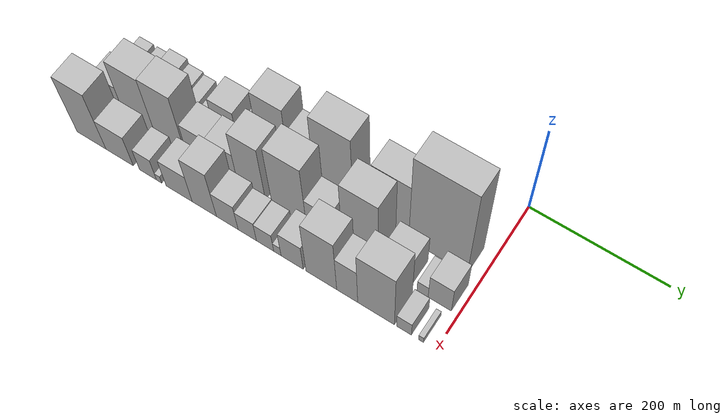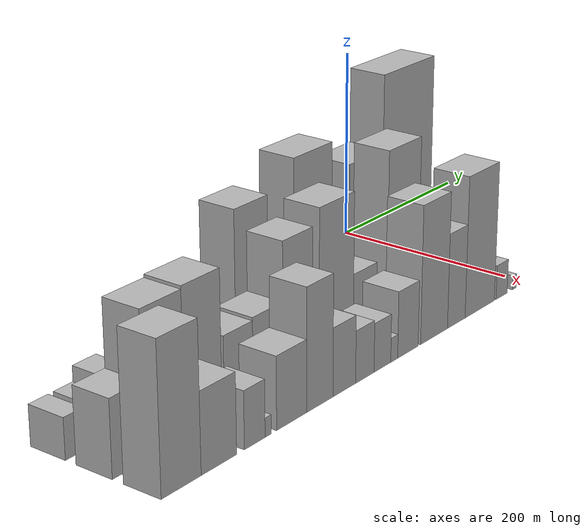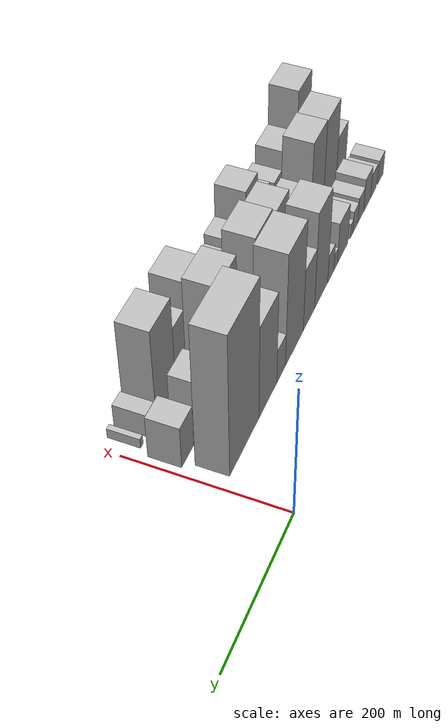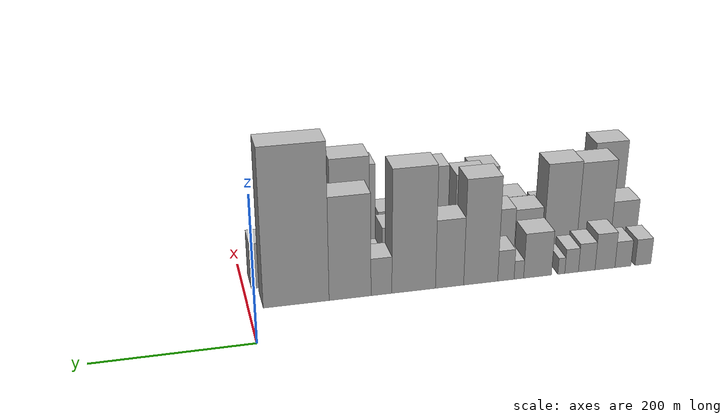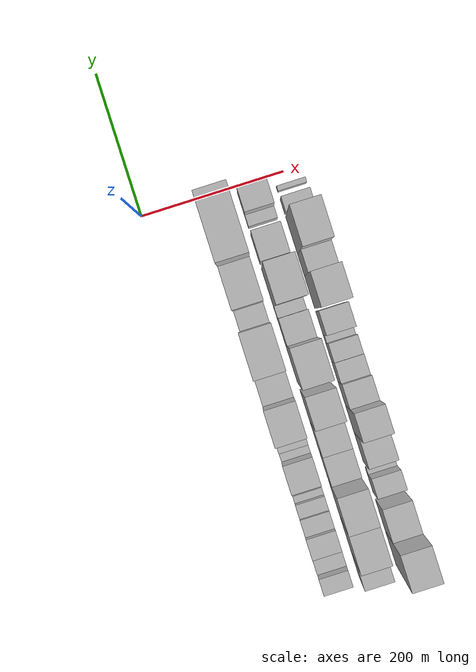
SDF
<sdf version="1.6">
 <world name="default">
  <model name="building_1">
   <static>1</static>
   <pose>100.0000 -536.5095 0 0.000000 0.000000 0.000000</pose>
   <link name="link">
    <pose>0 0 19.50 0 0 0</pose>
    <collision name="collision"><geometry><box><size>40.0000 22.9811 39.0000</size></box></geometry></collision>
    <visual name="visual">
     <cast_shadows>0</cast_shadows>
     <geometry><box><size>40.0000 22.9811 39.0000</size></box></geometry>
     <material>
      <script>
       <uri>model://HANNAS_wall/materials/scripts</uri>
       <uri>model://HANNAS_wall/materials/textures</uri>
       <name>vrc/HANNAS_wall</name>
      </script>
     </material>
    </visual>
   </link>
  </model>
  <model name="building_2">
   <static>1</static>
   <pose>100.0000 -507.4203 0 0.000000 0.000000 0.000000</pose>
   <link name="link">
    <pose>0 0 19.50 0 0 0</pose>
    <collision name="collision"><geometry><box><size>40.0000 23.1972 39.0000</size></box></geometry></collision>
    <visual name="visual">
     <cast_shadows>0</cast_shadows>
     <geometry><box><size>40.0000 23.1972 39.0000</size></box></geometry>
     <material>
      <script>
       <uri>model://HANNAS_wall/materials/scripts</uri>
       <uri>model://HANNAS_wall/materials/textures</uri>
       <name>vrc/HANNAS_wall</name>
      </script>
     </material>
    </visual>
   </link>
  </model>
  <model name="building_3">
   <static>1</static>
   <pose>100.0000 -481.5491 0 0.000000 0.000000 0.000000</pose>
   <link name="link">
    <pose>0 0 27.00 0 0 0</pose>
    <collision name="collision"><geometry><box><size>40.0000 28.5451 54.0000</size></box></geometry></collision>
    <visual name="visual">
     <cast_shadows>0</cast_shadows>
     <geometry><box><size>40.0000 28.5451 54.0000</size></box></geometry>
     <material>
      <script>
       <uri>model://HANNAS_wall/materials/scripts</uri>
       <uri>model://HANNAS_wall/materials/textures</uri>
       <name>vrc/HANNAS_wall</name>
      </script>
     </material>
    </visual>
   </link>
  </model>
  <model name="building_4">
   <static>1</static>
   <pose>100.0000 -455.4664 0 0.000000 0.000000 0.000000</pose>
   <link name="link">
    <pose>0 0 21.00 0 0 0</pose>
    <collision name="collision"><geometry><box><size>40.0000 23.6202 42.0000</size></box></geometry></collision>
    <visual name="visual">
     <cast_shadows>0</cast_shadows>
     <geometry><box><size>40.0000 23.6202 42.0000</size></box></geometry>
     <material>
      <script>
       <uri>model://HANNAS_wall/materials/scripts</uri>
       <uri>model://HANNAS_wall/materials/textures</uri>
       <name>vrc/HANNAS_wall</name>
      </script>
     </material>
    </visual>
   </link>
  </model>
  <model name="building_5">
   <static>1</static>
   <pose>100.0000 -434.0008 0 0.000000 0.000000 0.000000</pose>
   <link name="link">
    <pose>0 0 18.00 0 0 0</pose>
    <collision name="collision"><geometry><box><size>40.0000 19.3112 36.0000</size></box></geometry></collision>
    <visual name="visual">
     <cast_shadows>0</cast_shadows>
     <geometry><box><size>40.0000 19.3112 36.0000</size></box></geometry>
     <material>
      <script>
       <uri>model://HANNAS_wall/materials/scripts</uri>
       <uri>model://HANNAS_wall/materials/textures</uri>
       <name>vrc/HANNAS_wall</name>
      </script>
     </material>
    </visual>
   </link>
  </model>
  <model name="building_6">
   <static>1</static>
   <pose>100.0000 -419.4309 0 0.000000 0.000000 0.000000</pose>
   <link name="link">
    <pose>0 0 12.00 0 0 0</pose>
    <collision name="collision"><geometry><box><size>40.0000 9.8286 24.0000</size></box></geometry></collision>
    <visual name="visual">
     <cast_shadows>0</cast_shadows>
     <geometry><box><size>40.0000 9.8286 24.0000</size></box></geometry>
     <material>
      <script>
       <uri>model://HANNAS_wall/materials/scripts</uri>
       <uri>model://HANNAS_wall/materials/textures</uri>
       <name>vrc/HANNAS_wall</name>
      </script>
     </material>
    </visual>
   </link>
  </model>
  <model name="building_7">
   <static>1</static>
   <pose>100.0000 -385.9713 0 0.000000 0.000000 0.000000</pose>
   <link name="link">
    <pose>0 0 33.00 0 0 0</pose>
    <collision name="collision"><geometry><box><size>40.0000 39.0905 66.0000</size></box></geometry></collision>
    <visual name="visual">
     <cast_shadows>0</cast_shadows>
     <geometry><box><size>40.0000 39.0905 66.0000</size></box></geometry>
     <material>
      <script>
       <uri>model://HANNAS_wall/materials/scripts</uri>
       <uri>model://HANNAS_wall/materials/textures</uri>
       <name>vrc/HANNAS_wall</name>
      </script>
     </material>
    </visual>
   </link>
  </model>
  <model name="building_8">
   <static>1</static>
   <pose>100.0000 -359.7525 0 0.000000 0.000000 0.000000</pose>
   <link name="link">
    <pose>0 0 13.50 0 0 0</pose>
    <collision name="collision"><geometry><box><size>40.0000 13.3472 27.0000</size></box></geometry></collision>
    <visual name="visual">
     <cast_shadows>0</cast_shadows>
     <geometry><box><size>40.0000 13.3472 27.0000</size></box></geometry>
     <material>
      <script>
       <uri>model://HANNAS_wall/materials/scripts</uri>
       <uri>model://HANNAS_wall/materials/textures</uri>
       <name>vrc/HANNAS_wall</name>
      </script>
     </material>
    </visual>
   </link>
  </model>
  <model name="building_9">
   <static>1</static>
   <pose>100.0000 -341.7140 0 0.000000 0.000000 0.000000</pose>
   <link name="link">
    <pose>0 0 22.50 0 0 0</pose>
    <collision name="collision"><geometry><box><size>40.0000 22.7298 45.0000</size></box></geometry></collision>
    <visual name="visual">
     <cast_shadows>0</cast_shadows>
     <geometry><box><size>40.0000 22.7298 45.0000</size></box></geometry>
     <material>
      <script>
       <uri>model://HANNAS_wall/materials/scripts</uri>
       <uri>model://HANNAS_wall/materials/textures</uri>
       <name>vrc/HANNAS_wall</name>
      </script>
     </material>
    </visual>
   </link>
  </model>
  <model name="building_10">
   <static>1</static>
   <pose>100.0000 -306.9536 0 0.000000 0.000000 0.000000</pose>
   <link name="link">
    <pose>0 0 76.50 0 0 0</pose>
    <collision name="collision"><geometry><box><size>40.0000 46.7910 153.0000</size></box></geometry></collision>
    <visual name="visual">
     <cast_shadows>0</cast_shadows>
     <geometry><box><size>40.0000 46.7910 153.0000</size></box></geometry>
     <material>
      <script>
       <uri>model://HANNAS_wall/materials/scripts</uri>
       <uri>model://HANNAS_wall/materials/textures</uri>
       <name>vrc/HANNAS_wall</name>
      </script>
     </material>
    </visual>
   </link>
  </model>
  <model name="building_11">
   <static>1</static>
   <pose>100.0000 -264.3892 0 0.000000 0.000000 0.000000</pose>
   <link name="link">
    <pose>0 0 49.50 0 0 0</pose>
    <collision name="collision"><geometry><box><size>40.0000 38.3377 99.0000</size></box></geometry></collision>
    <visual name="visual">
     <cast_shadows>0</cast_shadows>
     <geometry><box><size>40.0000 38.3377 99.0000</size></box></geometry>
     <material>
      <script>
       <uri>model://HANNAS_wall/materials/scripts</uri>
       <uri>model://HANNAS_wall/materials/textures</uri>
       <name>vrc/HANNAS_wall</name>
      </script>
     </material>
    </visual>
   </link>
  </model>
  <model name="building_12">
   <static>1</static>
   <pose>100.0000 -215.9052 0 0.000000 0.000000 0.000000</pose>
   <link name="link">
    <pose>0 0 88.50 0 0 0</pose>
    <collision name="collision"><geometry><box><size>40.0000 58.6303 177.0000</size></box></geometry></collision>
    <visual name="visual">
     <cast_shadows>0</cast_shadows>
     <geometry><box><size>40.0000 58.6303 177.0000</size></box></geometry>
     <material>
      <script>
       <uri>model://HANNAS_wall/materials/scripts</uri>
       <uri>model://HANNAS_wall/materials/textures</uri>
       <name>vrc/HANNAS_wall</name>
      </script>
     </material>
    </visual>
   </link>
  </model>
  <model name="building_13">
   <static>1</static>
   <pose>100.0000 -172.7596 0 0.000000 0.000000 0.000000</pose>
   <link name="link">
    <pose>0 0 27.00 0 0 0</pose>
    <collision name="collision"><geometry><box><size>40.0000 27.6609 54.0000</size></box></geometry></collision>
    <visual name="visual">
     <cast_shadows>0</cast_shadows>
     <geometry><box><size>40.0000 27.6609 54.0000</size></box></geometry>
     <material>
      <script>
       <uri>model://HANNAS_wall/materials/scripts</uri>
       <uri>model://HANNAS_wall/materials/textures</uri>
       <name>vrc/HANNAS_wall</name>
      </script>
     </material>
    </visual>
   </link>
  </model>
  <model name="building_14">
   <static>1</static>
   <pose>100.0000 -131.3797 0 0.000000 0.000000 0.000000</pose>
   <link name="link">
    <pose>0 0 73.50 0 0 0</pose>
    <collision name="collision"><geometry><box><size>40.0000 55.0989 147.0000</size></box></geometry></collision>
    <visual name="visual">
     <cast_shadows>0</cast_shadows>
     <geometry><box><size>40.0000 55.0989 147.0000</size></box></geometry>
     <material>
      <script>
       <uri>model://HANNAS_wall/materials/scripts</uri>
       <uri>model://HANNAS_wall/materials/textures</uri>
       <name>vrc/HANNAS_wall</name>
      </script>
     </material>
    </visual>
   </link>
  </model>
  <model name="building_15">
   <static>1</static>
   <pose>100.0000 -61.2850 0 0.000000 0.000000 0.000000</pose>
   <link name="link">
    <pose>0 0 111.00 0 0 0</pose>
    <collision name="collision"><geometry><box><size>40.0000 85.0905 222.0000</size></box></geometry></collision>
    <visual name="visual">
     <cast_shadows>0</cast_shadows>
     <geometry><box><size>40.0000 85.0905 222.0000</size></box></geometry>
     <material>
      <script>
       <uri>model://HANNAS_wall/materials/scripts</uri>
       <uri>model://HANNAS_wall/materials/textures</uri>
       <name>vrc/HANNAS_wall</name>
      </script>
     </material>
    </visual>
   </link>
  </model>
  <model name="building_31">
   <static>1</static>
   <pose>152.0000 -529.0312 0 0.000000 0.000000 0.000000</pose>
   <link name="link">
    <pose>0 0 36.00 0 0 0</pose>
    <collision name="collision"><geometry><box><size>40.0000 37.9376 72.0000</size></box></geometry></collision>
    <visual name="visual">
     <cast_shadows>0</cast_shadows>
     <geometry><box><size>40.0000 37.9376 72.0000</size></box></geometry>
     <material>
      <script>
       <uri>model://HANNAS_wall/materials/scripts</uri>
       <uri>model://HANNAS_wall/materials/textures</uri>
       <name>vrc/HANNAS_wall</name>
      </script>
     </material>
    </visual>
   </link>
  </model>
  <model name="building_32">
   <static>1</static>
   <pose>152.0000 -485.1667 0 0.000000 0.000000 0.000000</pose>
   <link name="link">
    <pose>0 0 67.50 0 0 0</pose>
    <collision name="collision"><geometry><box><size>40.0000 49.7913 135.0000</size></box></geometry></collision>
    <visual name="visual">
     <cast_shadows>0</cast_shadows>
     <geometry><box><size>40.0000 49.7913 135.0000</size></box></geometry>
     <material>
      <script>
       <uri>model://HANNAS_wall/materials/scripts</uri>
       <uri>model://HANNAS_wall/materials/textures</uri>
       <name>vrc/HANNAS_wall</name>
      </script>
     </material>
    </visual>
   </link>
  </model>
  <model name="building_33">
   <static>1</static>
   <pose>152.0000 -436.1419 0 0.000000 0.000000 0.000000</pose>
   <link name="link">
    <pose>0 0 69.00 0 0 0</pose>
    <collision name="collision"><geometry><box><size>40.0000 48.2583 138.0000</size></box></geometry></collision>
    <visual name="visual">
     <cast_shadows>0</cast_shadows>
     <geometry><box><size>40.0000 48.2583 138.0000</size></box></geometry>
     <material>
      <script>
       <uri>model://HANNAS_wall/materials/scripts</uri>
       <uri>model://HANNAS_wall/materials/textures</uri>
       <name>vrc/HANNAS_wall</name>
      </script>
     </material>
    </visual>
   </link>
  </model>
  <model name="building_34">
   <static>1</static>
   <pose>152.0000 -389.4961 0 0.000000 0.000000 0.000000</pose>
   <link name="link">
    <pose>0 0 37.50 0 0 0</pose>
    <collision name="collision"><geometry><box><size>40.0000 39.0334 75.0000</size></box></geometry></collision>
    <visual name="visual">
     <cast_shadows>0</cast_shadows>
     <geometry><box><size>40.0000 39.0334 75.0000</size></box></geometry>
     <material>
      <script>
       <uri>model://HANNAS_wall/materials/scripts</uri>
       <uri>model://HANNAS_wall/materials/textures</uri>
       <name>vrc/HANNAS_wall</name>
      </script>
     </material>
    </visual>
   </link>
  </model>
  <model name="building_35">
   <static>1</static>
   <pose>152.0000 -348.9275 0 0.000000 0.000000 0.000000</pose>
   <link name="link">
    <pose>0 0 39.00 0 0 0</pose>
    <collision name="collision"><geometry><box><size>40.0000 42.1038 78.0000</size></box></geometry></collision>
    <visual name="visual">
     <cast_shadows>0</cast_shadows>
     <geometry><box><size>40.0000 42.1038 78.0000</size></box></geometry>
     <material>
      <script>
       <uri>model://HANNAS_wall/materials/scripts</uri>
       <uri>model://HANNAS_wall/materials/textures</uri>
       <name>vrc/HANNAS_wall</name>
      </script>
     </material>
    </visual>
   </link>
  </model>
  <model name="building_36">
   <static>1</static>
   <pose>152.0000 -306.4578 0 0.000000 0.000000 0.000000</pose>
   <link name="link">
    <pose>0 0 67.50 0 0 0</pose>
    <collision name="collision"><geometry><box><size>40.0000 42.8357 135.0000</size></box></geometry></collision>
    <visual name="visual">
     <cast_shadows>0</cast_shadows>
     <geometry><box><size>40.0000 42.8357 135.0000</size></box></geometry>
     <material>
      <script>
       <uri>model://HANNAS_wall/materials/scripts</uri>
       <uri>model://HANNAS_wall/materials/textures</uri>
       <name>vrc/HANNAS_wall</name>
      </script>
     </material>
    </visual>
   </link>
  </model>
  <model name="building_37">
   <static>1</static>
   <pose>152.0000 -248.8536 0 0.000000 0.000000 0.000000</pose>
   <link name="link">
    <pose>0 0 75.00 0 0 0</pose>
    <collision name="collision"><geometry><box><size>40.0000 52.3726 150.0000</size></box></geometry></collision>
    <visual name="visual">
     <cast_shadows>0</cast_shadows>
     <geometry><box><size>40.0000 52.3726 150.0000</size></box></geometry>
     <material>
      <script>
       <uri>model://HANNAS_wall/materials/scripts</uri>
       <uri>model://HANNAS_wall/materials/textures</uri>
       <name>vrc/HANNAS_wall</name>
      </script>
     </material>
    </visual>
   </link>
  </model>
  <model name="building_38">
   <static>1</static>
   <pose>152.0000 -204.0726 0 0.000000 0.000000 0.000000</pose>
   <link name="link">
    <pose>0 0 34.50 0 0 0</pose>
    <collision name="collision"><geometry><box><size>40.0000 37.1896 69.0000</size></box></geometry></collision>
    <visual name="visual">
     <cast_shadows>0</cast_shadows>
     <geometry><box><size>40.0000 37.1896 69.0000</size></box></geometry>
     <material>
      <script>
       <uri>model://HANNAS_wall/materials/scripts</uri>
       <uri>model://HANNAS_wall/materials/textures</uri>
       <name>vrc/HANNAS_wall</name>
      </script>
     </material>
    </visual>
   </link>
  </model>
  <model name="building_39">
   <static>1</static>
   <pose>152.0000 -177.0215 0 0.000000 0.000000 0.000000</pose>
   <link name="link">
    <pose>0 0 16.50 0 0 0</pose>
    <collision name="collision"><geometry><box><size>40.0000 16.9125 33.0000</size></box></geometry></collision>
    <visual name="visual">
     <cast_shadows>0</cast_shadows>
     <geometry><box><size>40.0000 16.9125 33.0000</size></box></geometry>
     <material>
      <script>
       <uri>model://HANNAS_wall/materials/scripts</uri>
       <uri>model://HANNAS_wall/materials/textures</uri>
       <name>vrc/HANNAS_wall</name>
      </script>
     </material>
    </visual>
   </link>
  </model>
  <model name="building_40">
   <static>1</static>
   <pose>152.0000 -142.2107 0 0.000000 0.000000 0.000000</pose>
   <link name="link">
    <pose>0 0 87.00 0 0 0</pose>
    <collision name="collision"><geometry><box><size>40.0000 52.7091 174.0000</size></box></geometry></collision>
    <visual name="visual">
     <cast_shadows>0</cast_shadows>
     <geometry><box><size>40.0000 52.7091 174.0000</size></box></geometry>
     <material>
      <script>
       <uri>model://HANNAS_wall/materials/scripts</uri>
       <uri>model://HANNAS_wall/materials/textures</uri>
       <name>vrc/HANNAS_wall</name>
      </script>
     </material>
    </visual>
   </link>
  </model>
  <model name="building_41">
   <static>1</static>
   <pose>152.0000 -89.1204 0 0.000000 0.000000 0.000000</pose>
   <link name="link">
    <pose>0 0 36.00 0 0 0</pose>
    <collision name="collision"><geometry><box><size>40.0000 41.4715 72.0000</size></box></geometry></collision>
    <visual name="visual">
     <cast_shadows>0</cast_shadows>
     <geometry><box><size>40.0000 41.4715 72.0000</size></box></geometry>
     <material>
      <script>
       <uri>model://HANNAS_wall/materials/scripts</uri>
       <uri>model://HANNAS_wall/materials/textures</uri>
       <name>vrc/HANNAS_wall</name>
      </script>
     </material>
    </visual>
   </link>
  </model>
  <model name="building_42">
   <static>1</static>
   <pose>152.0000 -51.3519 0 0.000000 0.000000 0.000000</pose>
   <link name="link">
    <pose>0 0 15.00 0 0 0</pose>
    <collision name="collision"><geometry><box><size>40.0000 16.0655 30.0000</size></box></geometry></collision>
    <visual name="visual">
     <cast_shadows>0</cast_shadows>
     <geometry><box><size>40.0000 16.0655 30.0000</size></box></geometry>
     <material>
      <script>
       <uri>model://HANNAS_wall/materials/scripts</uri>
       <uri>model://HANNAS_wall/materials/textures</uri>
       <name>vrc/HANNAS_wall</name>
      </script>
     </material>
    </visual>
   </link>
  </model>
  <model name="building_43">
   <static>1</static>
   <pose>152.0000 -26.7826 0 0.000000 0.000000 0.000000</pose>
   <link name="link">
    <pose>0 0 33.00 0 0 0</pose>
    <collision name="collision"><geometry><box><size>40.0000 33.0731 66.0000</size></box></geometry></collision>
    <visual name="visual">
     <cast_shadows>0</cast_shadows>
     <geometry><box><size>40.0000 33.0731 66.0000</size></box></geometry>
     <material>
      <script>
       <uri>model://HANNAS_wall/materials/scripts</uri>
       <uri>model://HANNAS_wall/materials/textures</uri>
       <name>vrc/HANNAS_wall</name>
      </script>
     </material>
    </visual>
   </link>
  </model>
  <model name="building_60">
   <static>1</static>
   <pose>204.0000 -524.0714 0 0.000000 0.000000 0.000000</pose>
   <link name="link">
    <pose>0 0 69.00 0 0 0</pose>
    <collision name="collision"><geometry><box><size>40.0000 47.8573 138.0000</size></box></geometry></collision>
    <visual name="visual">
     <cast_shadows>0</cast_shadows>
     <geometry><box><size>40.0000 47.8573 138.0000</size></box></geometry>
     <material>
      <script>
       <uri>model://HANNAS_wall/materials/scripts</uri>
       <uri>model://HANNAS_wall/materials/textures</uri>
       <name>vrc/HANNAS_wall</name>
      </script>
     </material>
    </visual>
   </link>
  </model>
  <model name="building_61">
   <static>1</static>
   <pose>204.0000 -477.9115 0 0.000000 0.000000 0.000000</pose>
   <link name="link">
    <pose>0 0 37.50 0 0 0</pose>
    <collision name="collision"><geometry><box><size>40.0000 44.4625 75.0000</size></box></geometry></collision>
    <visual name="visual">
     <cast_shadows>0</cast_shadows>
     <geometry><box><size>40.0000 44.4625 75.0000</size></box></geometry>
     <material>
      <script>
       <uri>model://HANNAS_wall/materials/scripts</uri>
       <uri>model://HANNAS_wall/materials/textures</uri>
       <name>vrc/HANNAS_wall</name>
      </script>
     </material>
    </visual>
   </link>
  </model>
  <model name="building_62">
   <static>1</static>
   <pose>204.0000 -432.0615 0 0.000000 0.000000 0.000000</pose>
   <link name="link">
    <pose>0 0 27.00 0 0 0</pose>
    <collision name="collision"><geometry><box><size>40.0000 27.2375 54.0000</size></box></geometry></collision>
    <visual name="visual">
     <cast_shadows>0</cast_shadows>
     <geometry><box><size>40.0000 27.2375 54.0000</size></box></geometry>
     <material>
      <script>
       <uri>model://HANNAS_wall/materials/scripts</uri>
       <uri>model://HANNAS_wall/materials/textures</uri>
       <name>vrc/HANNAS_wall</name>
      </script>
     </material>
    </visual>
   </link>
  </model>
  <model name="building_63">
   <static>1</static>
   <pose>204.0000 -414.2330 0 0.000000 0.000000 0.000000</pose>
   <link name="link">
    <pose>0 0 9.00 0 0 0</pose>
    <collision name="collision"><geometry><box><size>40.0000 8.4195 18.0000</size></box></geometry></collision>
    <visual name="visual">
     <cast_shadows>0</cast_shadows>
     <geometry><box><size>40.0000 8.4195 18.0000</size></box></geometry>
     <material>
      <script>
       <uri>model://HANNAS_wall/materials/scripts</uri>
       <uri>model://HANNAS_wall/materials/textures</uri>
       <name>vrc/HANNAS_wall</name>
      </script>
     </material>
    </visual>
   </link>
  </model>
  <model name="building_64">
   <static>1</static>
   <pose>204.0000 -382.3311 0 0.000000 0.000000 0.000000</pose>
   <link name="link">
    <pose>0 0 34.50 0 0 0</pose>
    <collision name="collision"><geometry><box><size>40.0000 41.3843 69.0000</size></box></geometry></collision>
    <visual name="visual">
     <cast_shadows>0</cast_shadows>
     <geometry><box><size>40.0000 41.3843 69.0000</size></box></geometry>
     <material>
      <script>
       <uri>model://HANNAS_wall/materials/scripts</uri>
       <uri>model://HANNAS_wall/materials/textures</uri>
       <name>vrc/HANNAS_wall</name>
      </script>
     </material>
    </visual>
   </link>
  </model>
  <model name="building_65">
   <static>1</static>
   <pose>204.0000 -342.7157 0 0.000000 0.000000 0.000000</pose>
   <link name="link">
    <pose>0 0 58.50 0 0 0</pose>
    <collision name="collision"><geometry><box><size>40.0000 37.8464 117.0000</size></box></geometry></collision>
    <visual name="visual">
     <cast_shadows>0</cast_shadows>
     <geometry><box><size>40.0000 37.8464 117.0000</size></box></geometry>
     <material>
      <script>
       <uri>model://HANNAS_wall/materials/scripts</uri>
       <uri>model://HANNAS_wall/materials/textures</uri>
       <name>vrc/HANNAS_wall</name>
      </script>
     </material>
    </visual>
   </link>
  </model>
  <model name="building_66">
   <static>1</static>
   <pose>204.0000 -307.0524 0 0.000000 0.000000 0.000000</pose>
   <link name="link">
    <pose>0 0 33.00 0 0 0</pose>
    <collision name="collision"><geometry><box><size>40.0000 33.4802 66.0000</size></box></geometry></collision>
    <visual name="visual">
     <cast_shadows>0</cast_shadows>
     <geometry><box><size>40.0000 33.4802 66.0000</size></box></geometry>
     <material>
      <script>
       <uri>model://HANNAS_wall/materials/scripts</uri>
       <uri>model://HANNAS_wall/materials/textures</uri>
       <name>vrc/HANNAS_wall</name>
      </script>
     </material>
    </visual>
   </link>
  </model>
  <model name="building_67">
   <static>1</static>
   <pose>204.0000 -276.2774 0 0.000000 0.000000 0.000000</pose>
   <link name="link">
    <pose>0 0 25.50 0 0 0</pose>
    <collision name="collision"><geometry><box><size>40.0000 28.0697 51.0000</size></box></geometry></collision>
    <visual name="visual">
     <cast_shadows>0</cast_shadows>
     <geometry><box><size>40.0000 28.0697 51.0000</size></box></geometry>
     <material>
      <script>
       <uri>model://HANNAS_wall/materials/scripts</uri>
       <uri>model://HANNAS_wall/materials/textures</uri>
       <name>vrc/HANNAS_wall</name>
      </script>
     </material>
    </visual>
   </link>
  </model>
  <model name="building_68">
   <static>1</static>
   <pose>204.0000 -249.1602 0 0.000000 0.000000 0.000000</pose>
   <link name="link">
    <pose>0 0 24.00 0 0 0</pose>
    <collision name="collision"><geometry><box><size>40.0000 26.1648 48.0000</size></box></geometry></collision>
    <visual name="visual">
     <cast_shadows>0</cast_shadows>
     <geometry><box><size>40.0000 26.1648 48.0000</size></box></geometry>
     <material>
      <script>
       <uri>model://HANNAS_wall/materials/scripts</uri>
       <uri>model://HANNAS_wall/materials/textures</uri>
       <name>vrc/HANNAS_wall</name>
      </script>
     </material>
    </visual>
   </link>
  </model>
  <model name="building_69">
   <static>1</static>
   <pose>204.0000 -230.5649 0 0.000000 0.000000 0.000000</pose>
   <link name="link">
    <pose>0 0 12.00 0 0 0</pose>
    <collision name="collision"><geometry><box><size>40.0000 11.0256 24.0000</size></box></geometry></collision>
    <visual name="visual">
     <cast_shadows>0</cast_shadows>
     <geometry><box><size>40.0000 11.0256 24.0000</size></box></geometry>
     <material>
      <script>
       <uri>model://HANNAS_wall/materials/scripts</uri>
       <uri>model://HANNAS_wall/materials/textures</uri>
       <name>vrc/HANNAS_wall</name>
      </script>
     </material>
    </visual>
   </link>
  </model>
  <model name="building_70">
   <static>1</static>
   <pose>204.0000 -208.4554 0 0.000000 0.000000 0.000000</pose>
   <link name="link">
    <pose>0 0 33.00 0 0 0</pose>
    <collision name="collision"><geometry><box><size>40.0000 33.1934 66.0000</size></box></geometry></collision>
    <visual name="visual">
     <cast_shadows>0</cast_shadows>
     <geometry><box><size>40.0000 33.1934 66.0000</size></box></geometry>
     <material>
      <script>
       <uri>model://HANNAS_wall/materials/scripts</uri>
       <uri>model://HANNAS_wall/materials/textures</uri>
       <name>vrc/HANNAS_wall</name>
      </script>
     </material>
    </visual>
   </link>
  </model>
  <model name="building_71">
   <static>1</static>
   <pose>204.0000 -165.1659 0 0.000000 0.000000 0.000000</pose>
   <link name="link">
    <pose>0 0 69.00 0 0 0</pose>
    <collision name="collision"><geometry><box><size>40.0000 45.3856 138.0000</size></box></geometry></collision>
    <visual name="visual">
     <cast_shadows>0</cast_shadows>
     <geometry><box><size>40.0000 45.3856 138.0000</size></box></geometry>
     <material>
      <script>
       <uri>model://HANNAS_wall/materials/scripts</uri>
       <uri>model://HANNAS_wall/materials/textures</uri>
       <name>vrc/HANNAS_wall</name>
      </script>
     </material>
    </visual>
   </link>
  </model>
  <model name="building_72">
   <static>1</static>
   <pose>204.0000 -127.1355 0 0.000000 0.000000 0.000000</pose>
   <link name="link">
    <pose>0 0 48.00 0 0 0</pose>
    <collision name="collision"><geometry><box><size>40.0000 30.6753 96.0000</size></box></geometry></collision>
    <visual name="visual">
     <cast_shadows>0</cast_shadows>
     <geometry><box><size>40.0000 30.6753 96.0000</size></box></geometry>
     <material>
      <script>
       <uri>model://HANNAS_wall/materials/scripts</uri>
       <uri>model://HANNAS_wall/materials/textures</uri>
       <name>vrc/HANNAS_wall</name>
      </script>
     </material>
    </visual>
   </link>
  </model>
  <model name="building_73">
   <static>1</static>
   <pose>204.0000 -85.3646 0 0.000000 0.000000 0.000000</pose>
   <link name="link">
    <pose>0 0 72.00 0 0 0</pose>
    <collision name="collision"><geometry><box><size>40.0000 52.8665 144.0000</size></box></geometry></collision>
    <visual name="visual">
     <cast_shadows>0</cast_shadows>
     <geometry><box><size>40.0000 52.8665 144.0000</size></box></geometry>
     <material>
      <script>
       <uri>model://HANNAS_wall/materials/scripts</uri>
       <uri>model://HANNAS_wall/materials/textures</uri>
       <name>vrc/HANNAS_wall</name>
      </script>
     </material>
    </visual>
   </link>
  </model>
  <model name="building_74">
   <static>1</static>
   <pose>204.0000 -45.3806 0 0.000000 0.000000 0.000000</pose>
   <link name="link">
    <pose>0 0 18.00 0 0 0</pose>
    <collision name="collision"><geometry><box><size>40.0000 21.1015 36.0000</size></box></geometry></collision>
    <visual name="visual">
     <cast_shadows>0</cast_shadows>
     <geometry><box><size>40.0000 21.1015 36.0000</size></box></geometry>
     <material>
      <script>
       <uri>model://HANNAS_wall/materials/scripts</uri>
       <uri>model://HANNAS_wall/materials/textures</uri>
       <name>vrc/HANNAS_wall</name>
      </script>
     </material>
    </visual>
   </link>
  </model>
  <model name="building_75">
   <static>1</static>
   <pose>204.0000 -21.2537 0 0.000000 0.000000 0.000000</pose>
   <link name="link">
    <pose>0 0 7.50 0 0 0</pose>
    <collision name="collision"><geometry><box><size>40.0000 7.1522 15.0000</size></box></geometry></collision>
    <visual name="visual">
     <cast_shadows>0</cast_shadows>
     <geometry><box><size>40.0000 7.1522 15.0000</size></box></geometry>
     <material>
      <script>
       <uri>model://HANNAS_wall/materials/scripts</uri>
       <uri>model://HANNAS_wall/materials/textures</uri>
       <name>vrc/HANNAS_wall</name>
      </script>
     </material>
    </visual>
   </link>
  </model>
 </world>
</sdf>
